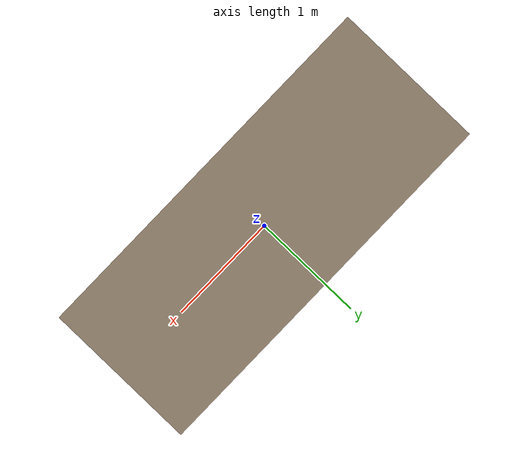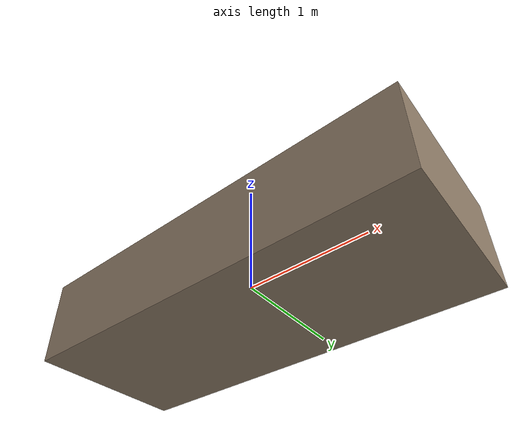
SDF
<?xml version="1.0"?>
<sdf version="1.6">
  <model name="conference_table_large">
    <static>true</static>
    <link name="link">
      <collision name="col">
        <geometry>
          <box>
            <size>3.2 1.3 0.72</size>
          </box>
        </geometry>
      </collision>
      <visual name="vis">
        <geometry>
          <box>
            <size>3.2 1.3 0.72</size>
          </box>
        </geometry>
        <material>
          <ambient>0.55 0.48 0.4 1</ambient>
          <diffuse>0.55 0.48 0.4 1</diffuse>
        </material>
      </visual>
    </link>
  </model>
</sdf>
